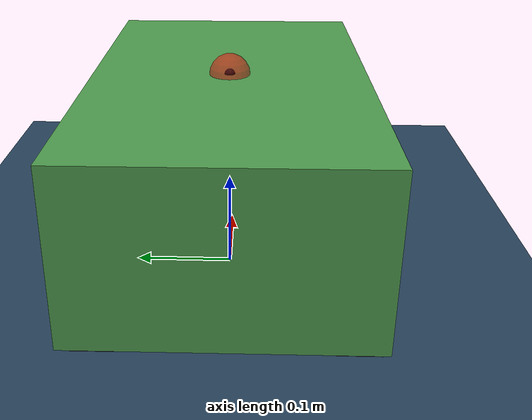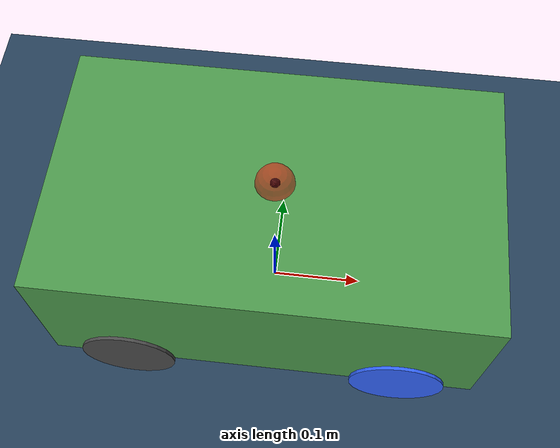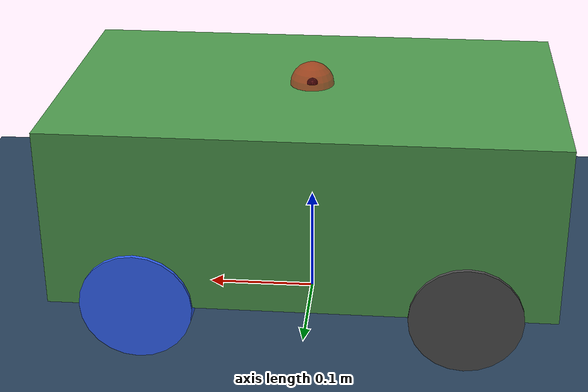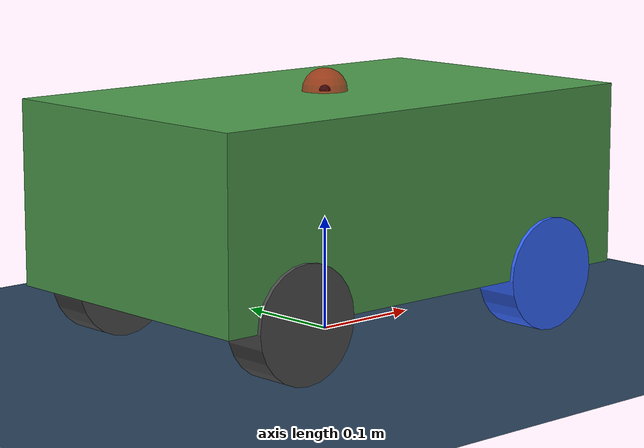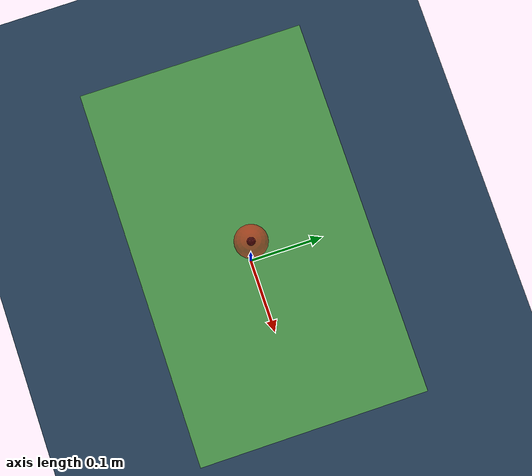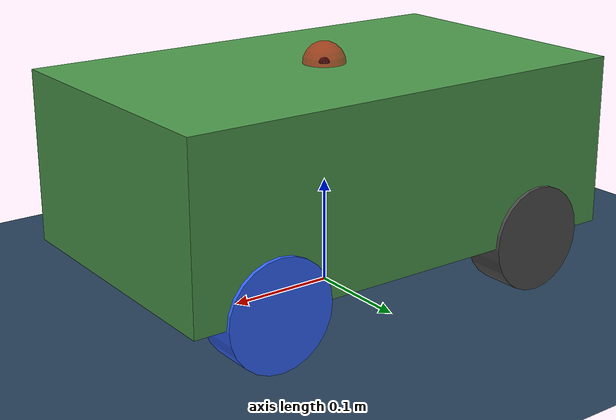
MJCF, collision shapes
<mujoco model="neoracer">

    <compiler angle="radian" autolimits="true"/>

    <option cone="elliptic" impratio="10"/>

    <asset>
        <texture name="grid" type="2d" builtin="checker" width="512" height="512"
                 rgb1=".1 .2 .3" rgb2=".2 .3 .4"/>
        <material name="grid" texture="grid" texrepeat="1 1" texuniform="true"
                  reflectance=".2"/>

        <mesh name="vis_chassis"  file="meshes/chassis.STL"/>
        <mesh name="vis_fl_wheel" file="meshes/fl_wheel.STL"/>
        <mesh name="vis_fr_wheel" file="meshes/fr_wheel.STL"/>
        <mesh name="vis_rl_wheel" file="meshes/rl_wheel.STL"/>
        <mesh name="vis_rr_wheel" file="meshes/rr_wheel.STL"/>
        <mesh name="vis_lidar"    file="meshes/lidar.STL"/>
    </asset>

    <default>
        <!-- Default joint damping and actuator force range for all joints. -->
        <joint damping=".03" actuatorfrcrange="-3 3"/>

        <default class="wheel">
            <joint type="hinge" axis="0 1 0" armature=".005" damping=".0005"/>
            <geom type="cylinder" size=".050 .02" zaxis="0 1 0"
                  friction="1.5 0.1 0.1" condim="3"/>
        </default>

        <default class="steer">
            <joint type="hinge" axis="0 0 1" limited="true" range="-.55 .55"
                   damping=".001" armature=".0002" frictionloss=".01"
                   actuatorfrcrange="-100 100"/>
        </default>

        <default class="susp">
            <joint type="slide" axis="0 0 1" range="-.010 .015"
                   stiffness="600" damping="25"/>
        </default>
    </default>

    <worldbody>
        <!-- Ground plane; friction matches the wheels. -->
        <geom type="plane" size="10 10 .01" material="grid" friction="1.5 0.1 0.1"/>

        <body name="car" pos="0 0 .1306">
            <freejoint/>
            <light name="top_light" pos="0 0 2" mode="trackcom" diffuse=".4 .4 .4"/>

            <inertial pos=".0090 .0029 -.0617" mass="1.6211"
                      diaginertia=".002377 .0058394 .0070057"/>

            <geom name="chassis" type="box" size=".223 .134 .0806"
                  rgba=".3 .6 .3 0.1" mass="0"/>
            <!-- Cosmetic chassis mesh (contype/conaffinity=0 → no physics), offset
                 +33mm fwd, +22mm up from the box centre. -->
            <geom name="vis_chassis" type="mesh" mass="0" mesh="vis_chassis"
                  pos="0.033 0 0.022"
                  contype="0" conaffinity="0"
                  rgba=".75 .75 .75 1"/>

            <!-- IMU site at the chassis centre; sensors below reference it. -->
            <site name="imu" pos="0 0 0" size=".01" rgba="1 1 0 1"/>

            <site name="lidar_mount" pos="0 0 .0806" size=".02" rgba="1 0 0 .5"/>

            <site name="lidar_000" pos="0 0 .0806" zaxis="1.000000  0.000000 0" size=".005"/>
            <site name="lidar_045" pos="0 0 .0806" zaxis="0.707107  0.707107 0" size=".005"/>
            <site name="lidar_090" pos="0 0 .0806" zaxis="0.000000  1.000000 0" size=".005"/>
            <site name="lidar_135" pos="0 0 .0806" zaxis="-0.707107 0.707107 0" size=".005"/>
            <site name="lidar_180" pos="0 0 .0806" zaxis="-1.000000 0.000000 0" size=".005"/>
            <site name="lidar_225" pos="0 0 .0806" zaxis="-0.707107 -0.707107 0" size=".005"/>
            <site name="lidar_270" pos="0 0 .0806" zaxis="0.000000  -1.000000 0" size=".005"/>
            <site name="lidar_315" pos="0 0 .0806" zaxis="0.707107  -0.707107 0" size=".005"/>
            <!-- Cosmetic lidar mesh at the mount site. -->
            <geom name="vis_lidar" type="mesh" mass="0" mesh="vis_lidar"
                  pos="0 0 0.0806"
                  contype="0" conaffinity="0" rgba=".2 .2 .2 1"/>

            <body name="steer_input_body" pos=".1439 0 .05">
                <joint name="steer_input" class="steer" range="-.45 .45"/>
                <geom type="cylinder" size=".02 .005" contype="0" conaffinity="0"
                      mass=".01" rgba="1 0 0 .3"/>
            </body>

            <body name="fl_wheel_body" pos=".1439 .1175 -.0806">
                <joint name="fl_susp"  class="susp"/>
                <joint name="fl_steer" class="steer"/>
                <joint name="fl_drive" class="wheel"/>
                <geom class="wheel" mass=".0573" rgba=".2 .4 1 0.1"/>
                <geom name="vis_fl_wheel" type="mesh" mass="0" mesh="vis_fl_wheel"
                      contype="0" conaffinity="0" rgba=".15 .15 .15 1"/>
            </body>

            <!-- FRONT RIGHT WHEEL — steerable + driven -->
            <body name="fr_wheel_body" pos=".1439 -.1175 -.0806">
                <joint name="fr_susp"  class="susp"/>
                <joint name="fr_steer" class="steer"/>
                <joint name="fr_drive" class="wheel"/>
                <geom class="wheel" mass=".0587" rgba=".2 .4 1 0.1"/>
                <geom name="vis_fr_wheel" type="mesh" mass="0" mesh="vis_fr_wheel"
                      contype="0" conaffinity="0" rgba=".15 .15 .15 1"/>
            </body>

            <!-- REAR LEFT WHEEL — driven only (no steer joint) -->
            <body name="rl_wheel_body" pos="-.1439 .1175 -.0806">
                <joint name="rl_susp"  class="susp"/>
                <joint name="rl_drive" class="wheel"/>
                <geom class="wheel" mass=".0587" rgba=".3 .3 .3 0.1"/>
                <geom name="vis_rl_wheel" type="mesh" mass="0" mesh="vis_rl_wheel"
                      contype="0" conaffinity="0" rgba=".15 .15 .15 1"/>
            </body>

            <!-- REAR RIGHT WHEEL — driven only -->
            <body name="rr_wheel_body" pos="-.1439 -.1175 -.0806">
                <joint name="rr_susp"  class="susp"/>
                <joint name="rr_drive" class="wheel"/>
                <geom class="wheel" mass=".0587" rgba=".3 .3 .3 0.1"/>
                <geom name="vis_rr_wheel" type="mesh" mass="0" mesh="vis_rr_wheel"
                      contype="0" conaffinity="0" rgba=".15 .15 .15 1"/>
            </body>

        </body>
    </worldbody>

    <actuator>
        <motor name="fl_motor" joint="fl_drive" gear="1" ctrlrange="-1 1"/>
        <motor name="fr_motor" joint="fr_drive" gear="1" ctrlrange="-1 1"/>
        <motor name="rl_motor" joint="rl_drive" gear="1" ctrlrange="-1 1"/>
        <motor name="rr_motor" joint="rr_drive" gear="1" ctrlrange="-1 1"/>

        <position name="steer_servo" joint="steer_input" kp="25" ctrlrange="-.4 .4"/>
    </actuator>

    <equality>
        <joint name="ackermann_left"
               joint1="fl_steer" joint2="steer_input"
               polycoef="-0.00000908 1.00091364 0.41786542 0.14737450 -0.08950548"/>
        <joint name="ackermann_right"
               joint1="fr_steer" joint2="steer_input"
               polycoef="0.00000908 1.00091364 -0.41786542 0.14737450 0.08950548"/>
    </equality>

    <sensor>
        <!--
        IMU at the chassis centre: accelerometer (m/s²), gyro (rad/s), orientation
        quaternion, and world-frame linear velocity.
        -->
        <accelerometer name="imu_accel"  site="imu"/>
        <gyro          name="imu_gyro"   site="imu"/>
        <framequat     name="imu_quat"   objtype="site" objname="imu"/>
        <framelinvel   name="imu_linvel" objtype="site" objname="imu"/>

        <jointpos name="steer_cmd_pos" joint="steer_input"/>
        <jointpos name="fl_steer_pos"  joint="fl_steer"/>
        <jointpos name="fr_steer_pos"  joint="fr_steer"/>

        <!--
        Wheel angular velocity (rad/s). Multiply by 0.050 m (wheel_radius) for surface speed in m/s.
        Positive = forward rotation.
        -->
        <jointvel name="fl_wheel_vel" joint="fl_drive"/>
        <jointvel name="fr_wheel_vel" joint="fr_drive"/>
        <jointvel name="rl_wheel_vel" joint="rl_drive"/>
        <jointvel name="rr_wheel_vel" joint="rr_drive"/>

        <jointpos name="fl_susp_pos" joint="fl_susp"/>
        <jointpos name="fr_susp_pos" joint="fr_susp"/>
        <jointpos name="rl_susp_pos" joint="rl_susp"/>
        <jointpos name="rr_susp_pos" joint="rr_susp"/>

        <!--
        LiDAR: 8 rangefinder beams at 45° intervals, one per ray site above.
        Each returns distance to the nearest geom (m), or -1 if nothing within cutoff.
        -->
        <rangefinder name="lidar_000" site="lidar_000"/>
        <rangefinder name="lidar_045" site="lidar_045"/>
        <rangefinder name="lidar_090" site="lidar_090"/>
        <rangefinder name="lidar_135" site="lidar_135"/>
        <rangefinder name="lidar_180" site="lidar_180"/>
        <rangefinder name="lidar_225" site="lidar_225"/>
        <rangefinder name="lidar_270" site="lidar_270"/>
        <rangefinder name="lidar_315" site="lidar_315"/>
    </sensor>

</mujoco>
